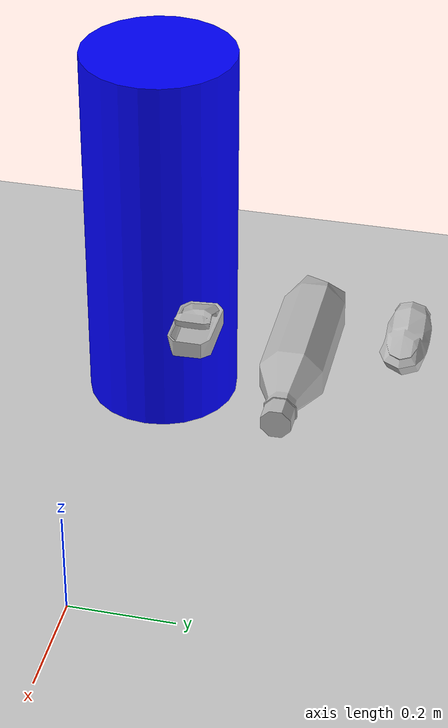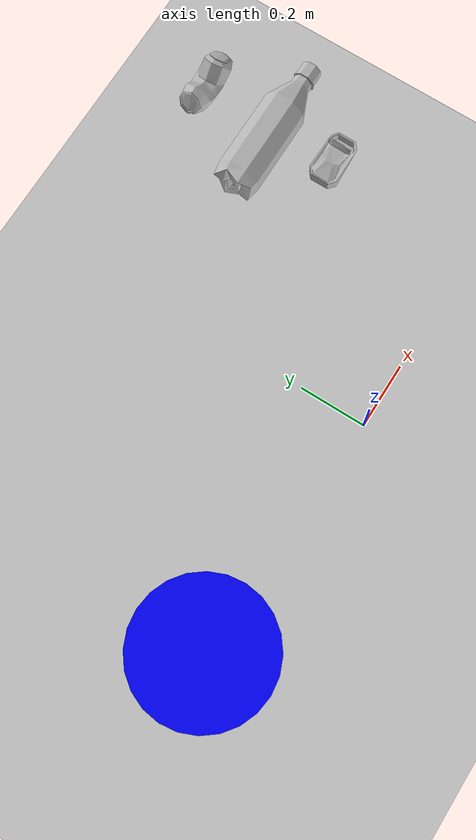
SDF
<sdf version="1.10">
 <world name="empty">
  <physics name="1ms" type="ignored">
   <max_step_size>0.001</max_step_size>
   <real_time_factor>1</real_time_factor>
   <real_time_update_rate>1000</real_time_update_rate>
  </physics>
  <plugin name="gz::sim::systems::Physics" filename="gz-sim-physics-system"/>
  <plugin name="gz::sim::systems::UserCommands" filename="gz-sim-user-commands-system"/>
  <plugin name="gz::sim::systems::SceneBroadcaster" filename="gz-sim-scene-broadcaster-system"/>
  <plugin name="gz::sim::systems::Contact" filename="gz-sim-contact-system"/>
  <plugin filename="gz-sim-sensors-system" name="gz::sim::systems::Sensors">
   <render_engine>ogre2</render_engine>
  </plugin>
  <gravity>0 0 -9.8000000000000007</gravity>
  <magnetic_field>5.5644999999999998e-06 2.2875799999999999e-05 -4.2388400000000002e-05</magnetic_field>
  <atmosphere type="adiabatic"/>
  <scene>
   <ambient>0.400000006 0.400000006 0.400000006 1</ambient>
   <background>0.699999988 0.699999988 0.699999988 1</background>
   <shadows>false</shadows>
  </scene>
  <model name="ground_plane">
   <static>true</static>
   <link name="link">
    <collision name="collision">
     <geometry><plane><normal>0 0 1</normal><size>100 100</size></plane></geometry>
     <surface><friction><ode><mu>100</mu><mu2>50</mu2></ode></friction></surface>
    </collision>
    <visual name="visual">
     <geometry><plane><normal>0 0 1</normal><size>100 100</size></plane></geometry>
     <material>
      <ambient>0.800000012 0.800000012 0.800000012 1</ambient>
      <diffuse>0.800000012 0.800000012 0.800000012 1</diffuse>
      <specular>0.800000012 0.800000012 0.800000012 1</specular>
     </material>
    </visual>
    <inertial>
     <mass>1</mass>
     <inertia><ixx>1</ixx><ixy>0</ixy><ixz>0</ixz><iyy>1</iyy><iyz>0</iyz><izz>1</izz></inertia>
    </inertial>
   </link>
  </model>
  <light name="sun" type="directional">
   <pose>0 0 5 0 0 0</pose>
   <cast_shadows>false</cast_shadows>
   <intensity>1</intensity>
   <direction>-0.5 0.10000000000000001 -0.90000000000000002</direction>
   <diffuse>0.800000012 0.800000012 0.800000012 1</diffuse>
   <specular>0.200000003 0.200000003 0.200000003 1</specular>
   <attenuation>
    <range>1000</range>
    <linear>0.01</linear>
    <constant>0.90000000000000002</constant>
    <quadratic>0.001</quadratic>
   </attenuation>
   <spot><inner_angle>0</inner_angle><outer_angle>0</outer_angle><falloff>0</falloff></spot>
  </light>
  <model name="cylinder_model">
   <static>true</static>
   <link name="cylinder_link">
    <visual name="visual">
     <geometry><cylinder><radius>0.15</radius><length>0.75</length></cylinder></geometry>
     <material><ambient>0 0 1 1</ambient><diffuse>0 0 1 1</diffuse></material>
    </visual>
    <collision name="collision">
     <geometry><cylinder><radius>0.15</radius><length>0.75</length></cylinder></geometry>
    </collision>
    <inertial>
     <mass>1.0</mass>
     <inertia><ixx>0.1</ixx><iyy>0.1</iyy><izz>0.1</izz><ixy>0</ixy><ixz>0</ixz><iyz>0</iyz></inertia>
    </inertial>
   </link>
   <pose>-0.7 0 0.375 0 0 0</pose>
  </model>
  <include>
   <static>false</static>
   <uri>model://coke_can</uri>
   <name>coke_can</name>
   <pose>0.25 0.6 0.80 0 0 0</pose>
  </include>
  <include>
   <static>false</static>
   <uri>model://dirtyBottle</uri>
   <name>dirtyBottle</name>
   <pose>0.25 0.45 0.80 0 1.5707 0</pose>
  </include>
  <include>
   <static>false</static>
   <uri>model://fish_can</uri>
   <name>fish_can</name>
   <pose>0.25 0.30 0.80 0 0 0</pose>
  </include>
 </world>
</sdf>

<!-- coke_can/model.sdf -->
<sdf version="1.6">
  <model name="coke_can">
    <static>false</static>
    <link name="link">
      <inertial>
        <mass>0.4</mass>
        <inertia>
          <ixx>0.000021715</ixx>
          <ixy>0</ixy>
          <ixz>0</ixz>
          <iyy>0.000021715</iyy>
          <iyz>0</iyz>
          <izz>0.00000178</izz>
        </inertia>
        <pose>0 0 0 0 0 0</pose>
      </inertial>
      <collision name="collision">
        <geometry>
          <mesh>
            <scale>1.0 1.0 1.0</scale>
            <uri>model://coke_can/meshes/soft_can.stl</uri>
          </mesh>
        </geometry>
        <surface>
          <bounce>
            <restitution_coefficient>0</restitution_coefficient>
            <threshold>0.01</threshold>
          </bounce>
          <friction>
            <ode>
              <mu>1.2</mu>
              <mu2>1.2</mu2>
            </ode>
          </friction>
        </surface>
      </collision>
      <visual name="visual">
        <geometry>
          <mesh>
           <scale>1.0 1.0 1.0</scale>
            <uri>model://coke_can/meshes/soft_can.dae</uri>
          </mesh>
        </geometry>
      </visual>
    </link>
  </model>
</sdf>

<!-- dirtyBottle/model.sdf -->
<sdf version="1.6">
  <model name="dirtyBottle">
    <static>false</static>
    <link name="link">
      <inertial>
        <mass>0.09</mass>
        <inertia>
          <ixx>0.000021715</ixx>
          <ixy>0</ixy>
          <ixz>0</ixz>
          <iyy>0.000021715</iyy>
          <iyz>0</iyz>
          <izz>0.00000178</izz>
        </inertia>
        <pose>0 0 0.0 0 0 0</pose>
      </inertial>
      <collision name="collision">
        <pose>0 0 -0.15 0 0 0</pose>
        <geometry>
          <mesh>
            <scale>1.0 1.0 1.0</scale>
            <uri>model://dirtyBottle/meshes/dirty_Plastic_Bottles2.stl</uri>
          </mesh>
        </geometry>
        <surface>
          <bounce>
            <restitution_coefficient>0</restitution_coefficient>
            <threshold>0.01</threshold>
          </bounce>
          <friction>
            <ode>
              <mu>1.2</mu>
              <mu2>1.2</mu2>
            </ode>
          </friction>
        </surface>
      </collision>
      <visual name="visual">
        <pose>0 0 -0.15 0 0 0</pose>
        <geometry>
           <mesh>
            <scale>1.0 1.0 1.0</scale>
            <uri>model://dirtyBottle/meshes/dirty_Plastic_Bottles2.dae</uri>
          </mesh>
        </geometry>
      </visual>
    </link>
  </model>
</sdf>

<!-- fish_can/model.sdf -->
<sdf version="1.6">
  <model name="Fish Can">
    <static>false</static>
    <link name="link">
      <inertial>
        <mass>0.4</mass>
        <inertia>
          <ixx>0.000021715</ixx>
          <ixy>0</ixy>
          <ixz>0</ixz>
          <iyy>0.000021715</iyy>
          <iyz>0</iyz>
          <izz>0.00000178</izz>
        </inertia>
        <pose>0 0 0 0 0 0</pose>
      </inertial>
      <collision name="collision">
        <geometry>
            <mesh>
            <scale>1.0 1.0 1.0</scale>
            <uri>model://fish_can/meshes/fish_can.dae</uri>
          </mesh>
        </geometry>
        <surface>
          <bounce>
            <restitution_coefficient>0</restitution_coefficient>
            <threshold>0.01</threshold>
          </bounce>
          <friction>
            <ode>
              <mu>1.2</mu>
              <mu2>1.2</mu2>
            </ode>
          </friction>
        </surface>
      </collision>

      <visual name="visual">
        <geometry>
          <mesh>
            <scale>1.0 1.0 1.0</scale>
            <uri>model://fish_can/meshes/fish_can.dae</uri>
          </mesh>
        </geometry>
      </visual>
    </link>
  </model>
</sdf>
